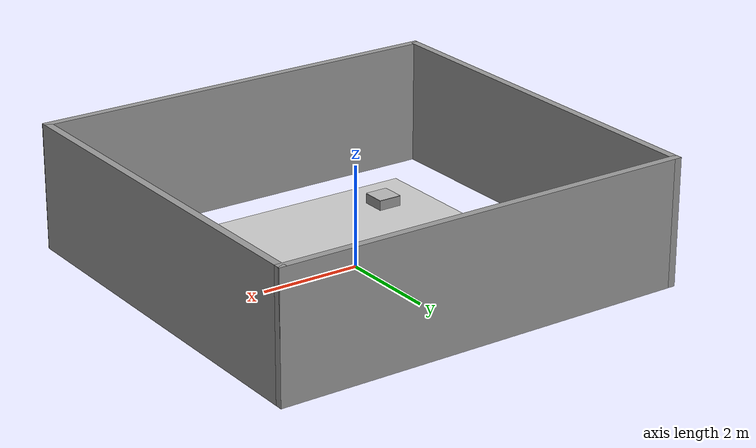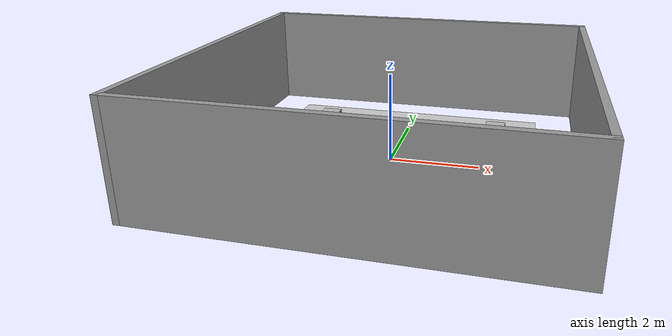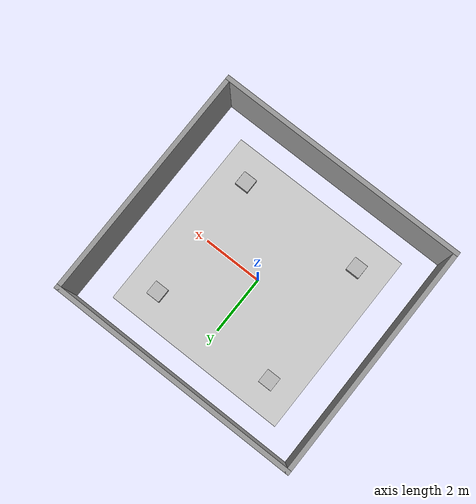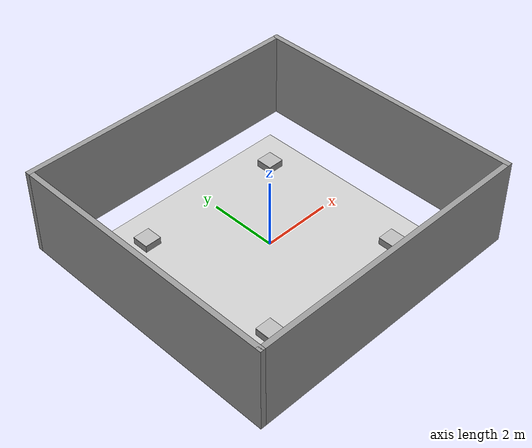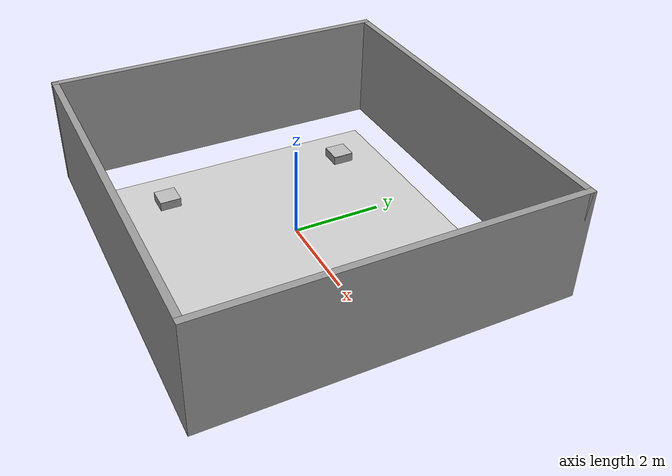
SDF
<sdf version="1.6">
 <world name="default">
  <light name="sun" type="directional">
   <pose>0 0 10 0 -0 0</pose>
   <diffuse>0.8 0.8 0.8 1</diffuse>
   <specular>0.2 0.2 0.2 1</specular>
   <attenuation>
    <range>1000</range>
    <constant>0.9</constant>
    <linear>0.01</linear>
    <quadratic>0.001</quadratic>
   </attenuation>
   <direction>-0.5 0.1 -0.9</direction>
  </light>
  <gravity>0 0 -9.8</gravity>
  <magnetic_field>6e-06 2.3e-05 -4.2e-05</magnetic_field>
  <atmosphere type="adiabatic"/>
  <physics name="default_physics" default="0" type="ode">
   <max_step_size>0.01</max_step_size>
   <real_time_factor>1</real_time_factor>
   <real_time_update_rate>100</real_time_update_rate>
  </physics>
  <scene><ambient>0.4 0.4 0.4 1</ambient><background>0.7 0.7 0.7 1</background><shadows>1</shadows></scene>
  <spherical_coordinates>
   <surface_model>EARTH_WGS84</surface_model>
   <latitude_deg>0</latitude_deg>
   <longitude_deg>0</longitude_deg>
   <elevation>0</elevation>
   <heading_deg>0</heading_deg>
  </spherical_coordinates>
  <model name="my_ground_plane">
   <static>1</static>
   <link name="link">
    <collision name="collision">
     <geometry><plane><normal>0 0 1</normal><size>6.4 6.4</size></plane></geometry>
     <surface><friction><ode><mu>100</mu><mu2>50</mu2></ode></friction></surface>
    </collision>
    <visual name="visual">
     <cast_shadows>0</cast_shadows>
     <geometry><plane><normal>0 0 1</normal><size>6.4 6.4</size></plane></geometry>
     <material>
      <script>
       <uri>model://my_ground_plane/materials/scripts</uri>
       <uri>model://my_ground_plane/materials/textures/</uri>
       <name>MyGroundPlane/Image</name>
      </script>
     </material>
    </visual>
   </link>
   <pose>0 0 0 0 0 -1.57</pose>
  </model>
  <model name="wall">
   <pose>1e-06 0 0 0 0 -1.57</pose>
   <link name="Wall_16">
    <collision name="Wall_16_Collision">
     <geometry><box><size>8 0.15 2.5</size></box></geometry>
     <pose>0 0 1.25 0 -0 0</pose>
    </collision>
    <visual name="Wall_16_Visual">
     <pose>0 0 1.25 0 -0 0</pose>
     <geometry><box><size>8 0.15 2.5</size></box></geometry>
     <material>
      <script><uri>file://media/materials/scripts/gazebo.material</uri><name>Gazebo/Grey</name></script>
      <ambient>1 1 1 1</ambient>
     </material>
     <meta><layer>0</layer></meta>
    </visual>
    <pose>0 4.175 0 0 -0 0</pose>
   </link>
   <link name="Wall_17">
    <collision name="Wall_17_Collision">
     <geometry><box><size>8.5 0.15 2.5</size></box></geometry>
     <pose>0 0 1.25 0 -0 0</pose>
    </collision>
    <visual name="Wall_17_Visual">
     <pose>0 0 1.25 0 -0 0</pose>
     <geometry><box><size>8.5 0.15 2.5</size></box></geometry>
     <material>
      <script><uri>file://media/materials/scripts/gazebo.material</uri><name>Gazebo/Grey</name></script>
      <ambient>1 1 1 1</ambient>
     </material>
     <meta><layer>0</layer></meta>
    </visual>
    <pose>3.925 -0 0 0 -0 -1.5708</pose>
   </link>
   <link name="Wall_18">
    <collision name="Wall_18_Collision">
     <geometry><box><size>8 0.15 2.5</size></box></geometry>
     <pose>0 0 1.25 0 -0 0</pose>
    </collision>
    <visual name="Wall_18_Visual">
     <pose>0 0 1.25 0 -0 0</pose>
     <geometry><box><size>8 0.15 2.5</size></box></geometry>
     <material>
      <script><uri>file://media/materials/scripts/gazebo.material</uri><name>Gazebo/Grey</name></script>
      <ambient>1 1 1 1</ambient>
     </material>
     <meta><layer>0</layer></meta>
    </visual>
    <pose>0 -4.175 0 0 -0 3.14159</pose>
   </link>
   <link name="Wall_9">
    <collision name="Wall_9_Collision">
     <geometry><box><size>8.5 0.15 2.5</size></box></geometry>
     <pose>0 0 1.25 0 -0 0</pose>
    </collision>
    <visual name="Wall_9_Visual">
     <pose>0 0 1.25 0 -0 0</pose>
     <geometry><box><size>8.5 0.15 2.5</size></box></geometry>
     <material>
      <script><uri>file://media/materials/scripts/gazebo.material</uri><name>Gazebo/Grey</name></script>
      <ambient>1 1 1 1</ambient>
     </material>
     <meta><layer>0</layer></meta>
    </visual>
    <pose>-3.925 -0 0 0 -0 1.5708</pose>
   </link>
   <static>1</static>
  </model>
  <model name="parking_apron_box">
   <link name="link_0">
    <inertial>
     <mass>1</mass>
     <inertia>
      <ixx>0.166667</ixx>
      <ixy>0</ixy>
      <ixz>0</ixz>
      <iyy>0.166667</iyy>
      <iyz>0</iyz>
      <izz>0.166667</izz>
     </inertia>
    </inertial>
    <visual name="visual">
     <geometry><box><size>0.48 0.48 0.2</size></box></geometry>
     <material>
      <lighting>1</lighting>
      <script><uri>file://media/materials/scripts/gazebo.material</uri><name>Gazebo/Grey</name></script>
      <shader type="pixel"><normal_map>__default__</normal_map></shader>
      <ambient>0.3 0.3 0.3 1</ambient>
      <diffuse>0.7 0.7 0.7 1</diffuse>
      <specular>0.01 0.01 0.01 1</specular>
      <emissive>0 0 0 1</emissive>
     </material>
    </visual>
    <collision name="collision">
     <geometry><box><size>0.48 0.48 0.2</size></box></geometry>
     <surface>
      <friction>
       <ode><mu>1</mu><mu2>1</mu2><fdir1>0 0 0</fdir1><slip1>0</slip1><slip2>0</slip2></ode>
       <torsional>
        <coefficient>1</coefficient>
        <patch_radius>0</patch_radius>
        <surface_radius>0</surface_radius>
        <use_patch_radius>1</use_patch_radius>
        <ode><slip>0</slip></ode>
       </torsional>
      </friction>
      <bounce><restitution_coefficient>0</restitution_coefficient><threshold>1e+06</threshold></bounce>
      <contact>
       <collide_without_contact>0</collide_without_contact>
       <collide_without_contact_bitmask>1</collide_without_contact_bitmask>
       <collide_bitmask>1</collide_bitmask>
       <ode>
        <soft_cfm>0</soft_cfm>
        <soft_erp>0.2</soft_erp>
        <kp>1e+13</kp>
        <kd>1</kd>
        <max_vel>0.01</max_vel>
        <min_depth>0</min_depth>
       </ode>
       <bullet>
        <split_impulse>1</split_impulse>
        <split_impulse_penetration_threshold>-0.01</split_impulse_penetration_threshold>
        <soft_cfm>0</soft_cfm>
        <soft_erp>0.2</soft_erp>
        <kp>1e+13</kp>
        <kd>1</kd>
       </bullet>
      </contact>
     </surface>
    </collision>
   </link>
   <static>1</static>
   <pose>-2.19496 2.19807 0.1 0 -0 0</pose>
  </model>
  <model name="parking_apron_box_0">
   <link name="link_0">
    <inertial>
     <mass>1</mass>
     <inertia>
      <ixx>0.166667</ixx>
      <ixy>0</ixy>
      <ixz>0</ixz>
      <iyy>0.166667</iyy>
      <iyz>0</iyz>
      <izz>0.166667</izz>
     </inertia>
    </inertial>
    <visual name="visual">
     <geometry><box><size>0.48 0.48 0.2</size></box></geometry>
     <material>
      <lighting>1</lighting>
      <script><uri>file://media/materials/scripts/gazebo.material</uri><name>Gazebo/Grey</name></script>
      <shader type="pixel"><normal_map>__default__</normal_map></shader>
      <ambient>0.3 0.3 0.3 1</ambient>
      <diffuse>0.7 0.7 0.7 1</diffuse>
      <specular>0.01 0.01 0.01 1</specular>
      <emissive>0 0 0 1</emissive>
     </material>
    </visual>
    <collision name="collision">
     <geometry><box><size>0.48 0.48 0.2</size></box></geometry>
     <surface>
      <friction>
       <ode><mu>1</mu><mu2>1</mu2><fdir1>0 0 0</fdir1><slip1>0</slip1><slip2>0</slip2></ode>
       <torsional>
        <coefficient>1</coefficient>
        <patch_radius>0</patch_radius>
        <surface_radius>0</surface_radius>
        <use_patch_radius>1</use_patch_radius>
        <ode><slip>0</slip></ode>
       </torsional>
      </friction>
      <bounce><restitution_coefficient>0</restitution_coefficient><threshold>1e+06</threshold></bounce>
      <contact>
       <collide_without_contact>0</collide_without_contact>
       <collide_without_contact_bitmask>1</collide_without_contact_bitmask>
       <collide_bitmask>1</collide_bitmask>
       <ode>
        <soft_cfm>0</soft_cfm>
        <soft_erp>0.2</soft_erp>
        <kp>1e+13</kp>
        <kd>1</kd>
        <max_vel>0.01</max_vel>
        <min_depth>0</min_depth>
       </ode>
       <bullet>
        <split_impulse>1</split_impulse>
        <split_impulse_penetration_threshold>-0.01</split_impulse_penetration_threshold>
        <soft_cfm>0</soft_cfm>
        <soft_erp>0.2</soft_erp>
        <kp>1e+13</kp>
        <kd>1</kd>
       </bullet>
      </contact>
     </surface>
    </collision>
   </link>
   <static>1</static>
   <pose>-2.17925 -2.19779 0.1 0 -0 0</pose>
  </model>
  <model name="parking_apron_box_1">
   <link name="link_0">
    <inertial>
     <mass>1</mass>
     <inertia>
      <ixx>0.166667</ixx>
      <ixy>0</ixy>
      <ixz>0</ixz>
      <iyy>0.166667</iyy>
      <iyz>0</iyz>
      <izz>0.166667</izz>
     </inertia>
    </inertial>
    <visual name="visual">
     <geometry><box><size>0.48 0.48 0.2</size></box></geometry>
     <material>
      <lighting>1</lighting>
      <script><uri>file://media/materials/scripts/gazebo.material</uri><name>Gazebo/Grey</name></script>
      <shader type="pixel"><normal_map>__default__</normal_map></shader>
      <ambient>0.3 0.3 0.3 1</ambient>
      <diffuse>0.7 0.7 0.7 1</diffuse>
      <specular>0.01 0.01 0.01 1</specular>
      <emissive>0 0 0 1</emissive>
     </material>
    </visual>
    <collision name="collision">
     <geometry><box><size>0.48 0.48 0.2</size></box></geometry>
     <surface>
      <friction>
       <ode><mu>1</mu><mu2>1</mu2><fdir1>0 0 0</fdir1><slip1>0</slip1><slip2>0</slip2></ode>
       <torsional>
        <coefficient>1</coefficient>
        <patch_radius>0</patch_radius>
        <surface_radius>0</surface_radius>
        <use_patch_radius>1</use_patch_radius>
        <ode><slip>0</slip></ode>
       </torsional>
      </friction>
      <bounce><restitution_coefficient>0</restitution_coefficient><threshold>1e+06</threshold></bounce>
      <contact>
       <collide_without_contact>0</collide_without_contact>
       <collide_without_contact_bitmask>1</collide_without_contact_bitmask>
       <collide_bitmask>1</collide_bitmask>
       <ode>
        <soft_cfm>0</soft_cfm>
        <soft_erp>0.2</soft_erp>
        <kp>1e+13</kp>
        <kd>1</kd>
        <max_vel>0.01</max_vel>
        <min_depth>0</min_depth>
       </ode>
       <bullet>
        <split_impulse>1</split_impulse>
        <split_impulse_penetration_threshold>-0.01</split_impulse_penetration_threshold>
        <soft_cfm>0</soft_cfm>
        <soft_erp>0.2</soft_erp>
        <kp>1e+13</kp>
        <kd>1</kd>
       </bullet>
      </contact>
     </surface>
    </collision>
   </link>
   <static>1</static>
   <pose>2.20165 -2.19239 0.1 0 -0 0</pose>
  </model>
  <model name="parking_apron_box_2">
   <link name="link_0">
    <inertial>
     <mass>1</mass>
     <inertia>
      <ixx>0.166667</ixx>
      <ixy>0</ixy>
      <ixz>0</ixz>
      <iyy>0.166667</iyy>
      <iyz>0</iyz>
      <izz>0.166667</izz>
     </inertia>
    </inertial>
    <visual name="visual">
     <geometry><box><size>0.48 0.48 0.2</size></box></geometry>
     <material>
      <lighting>1</lighting>
      <script><uri>file://media/materials/scripts/gazebo.material</uri><name>Gazebo/Grey</name></script>
      <shader type="pixel"><normal_map>__default__</normal_map></shader>
      <ambient>0.3 0.3 0.3 1</ambient>
      <diffuse>0.7 0.7 0.7 1</diffuse>
      <specular>0.01 0.01 0.01 1</specular>
      <emissive>0 0 0 1</emissive>
     </material>
    </visual>
    <collision name="collision">
     <geometry><box><size>0.48 0.48 0.2</size></box></geometry>
     <surface>
      <friction>
       <ode><mu>1</mu><mu2>1</mu2><fdir1>0 0 0</fdir1><slip1>0</slip1><slip2>0</slip2></ode>
       <torsional>
        <coefficient>1</coefficient>
        <patch_radius>0</patch_radius>
        <surface_radius>0</surface_radius>
        <use_patch_radius>1</use_patch_radius>
        <ode><slip>0</slip></ode>
       </torsional>
      </friction>
      <bounce><restitution_coefficient>0</restitution_coefficient><threshold>1e+06</threshold></bounce>
      <contact>
       <collide_without_contact>0</collide_without_contact>
       <collide_without_contact_bitmask>1</collide_without_contact_bitmask>
       <collide_bitmask>1</collide_bitmask>
       <ode>
        <soft_cfm>0</soft_cfm>
        <soft_erp>0.2</soft_erp>
        <kp>1e+13</kp>
        <kd>1</kd>
        <max_vel>0.01</max_vel>
        <min_depth>0</min_depth>
       </ode>
       <bullet>
        <split_impulse>1</split_impulse>
        <split_impulse_penetration_threshold>-0.01</split_impulse_penetration_threshold>
        <soft_cfm>0</soft_cfm>
        <soft_erp>0.2</soft_erp>
        <kp>1e+13</kp>
        <kd>1</kd>
       </bullet>
      </contact>
     </surface>
    </collision>
   </link>
   <static>1</static>
   <pose>2.19922 2.20709 0.1 0 -0 0</pose>
  </model>
  <model name="parking_apron_green">
   <static>1</static>
   <link name="link">
    <collision name="collision">
     <geometry><plane><normal>0 0 1</normal><size>0.48 0.48</size></plane></geometry>
     <surface><friction><ode><mu>100</mu><mu2>50</mu2></ode></friction></surface>
    </collision>
    <visual name="visual">
     <pose>0 0 0.21 0 -0 0</pose>
     <cast_shadows>0</cast_shadows>
     <geometry><plane><normal>0 0 1</normal><size>0.48 0.48</size></plane></geometry>
     <material>
      <script>
       <uri>model://parking_apron_green/materials/scripts</uri>
       <uri>model://parking_apron_green/materials/textures/</uri>
       <name>parking_apron_green/Image</name>
      </script>
     </material>
    </visual>
   </link>
   <pose>2.19922 2.20709 0 0 -0 0</pose>
  </model>
  <model name="parking_apron_brown">
   <static>1</static>
   <link name="link">
    <collision name="collision">
     <geometry><plane><normal>0 0 1</normal><size>0.48 0.48</size></plane></geometry>
     <surface><friction><ode><mu>100</mu><mu2>50</mu2></ode></friction></surface>
    </collision>
    <visual name="visual">
     <pose>0 0 0.21 0 -0 0</pose>
     <cast_shadows>0</cast_shadows>
     <geometry><plane><normal>0 0 1</normal><size>0.48 0.48</size></plane></geometry>
     <material>
      <script>
       <uri>model://parking_apron_brown/materials/scripts</uri>
       <uri>model://parking_apron_brown/materials/textures/</uri>
       <name>parking_apron_brown/Image</name>
      </script>
     </material>
    </visual>
   </link>
   <pose>2.19791 -2.19019 0 0 -0 0</pose>
  </model>
  <model name="parking_apron_red">
   <static>1</static>
   <link name="link">
    <collision name="collision">
     <geometry><plane><normal>0 0 1</normal><size>0.48 0.48</size></plane></geometry>
     <surface><friction><ode><mu>100</mu><mu2>50</mu2></ode></friction></surface>
    </collision>
    <visual name="visual">
     <pose>0 0 0.21 0 -0 0</pose>
     <cast_shadows>0</cast_shadows>
     <geometry><plane><normal>0 0 1</normal><size>0.48 0.48</size></plane></geometry>
     <material>
      <script>
       <uri>model://parking_apron_red/materials/scripts</uri>
       <uri>model://parking_apron_red/materials/textures/</uri>
       <name>parking_apron_red/Image</name>
      </script>
     </material>
    </visual>
   </link>
   <pose>-2.17532 -2.19888 0 0 -0 0</pose>
  </model>
  <model name="parking_apron_blue">
   <static>1</static>
   <link name="link">
    <collision name="collision">
     <geometry><plane><normal>0 0 1</normal><size>0.48 0.48</size></plane></geometry>
     <surface><friction><ode><mu>100</mu><mu2>50</mu2></ode></friction></surface>
    </collision>
    <visual name="visual">
     <pose>0 0 0.21 0 -0 0</pose>
     <cast_shadows>0</cast_shadows>
     <geometry><plane><normal>0 0 1</normal><size>0.48 0.48</size></plane></geometry>
     <material>
      <script>
       <uri>model://parking_apron_blue/materials/scripts</uri>
       <uri>model://parking_apron_blue/materials/textures/</uri>
       <name>parking_apron_blue/Image</name>
      </script>
     </material>
    </visual>
   </link>
   <pose>-2.19443 2.19675 0 0 -0 0</pose>
  </model>
 </world>
</sdf>
